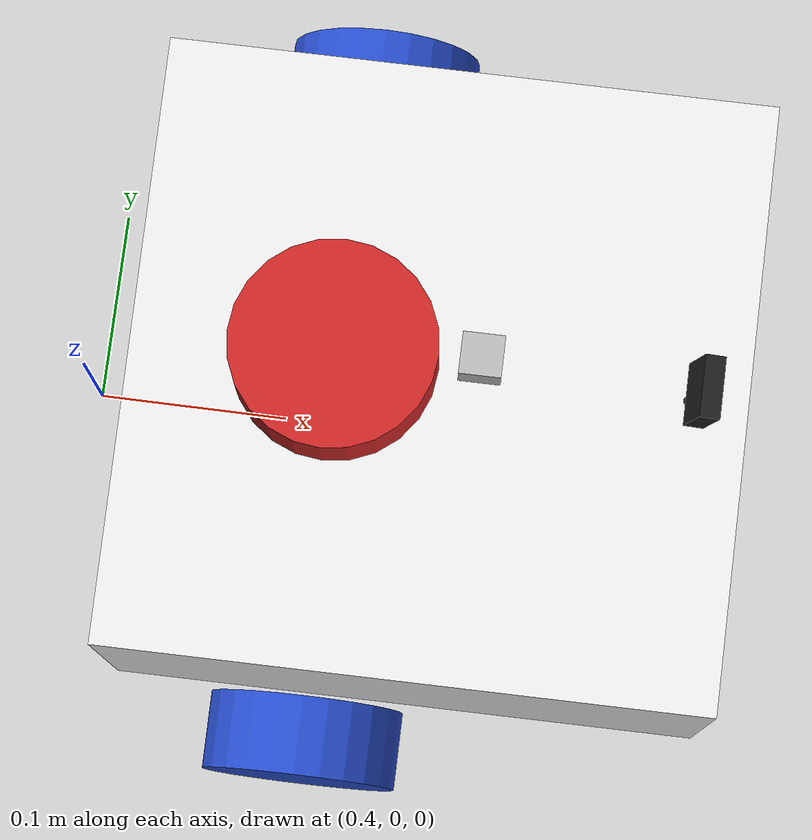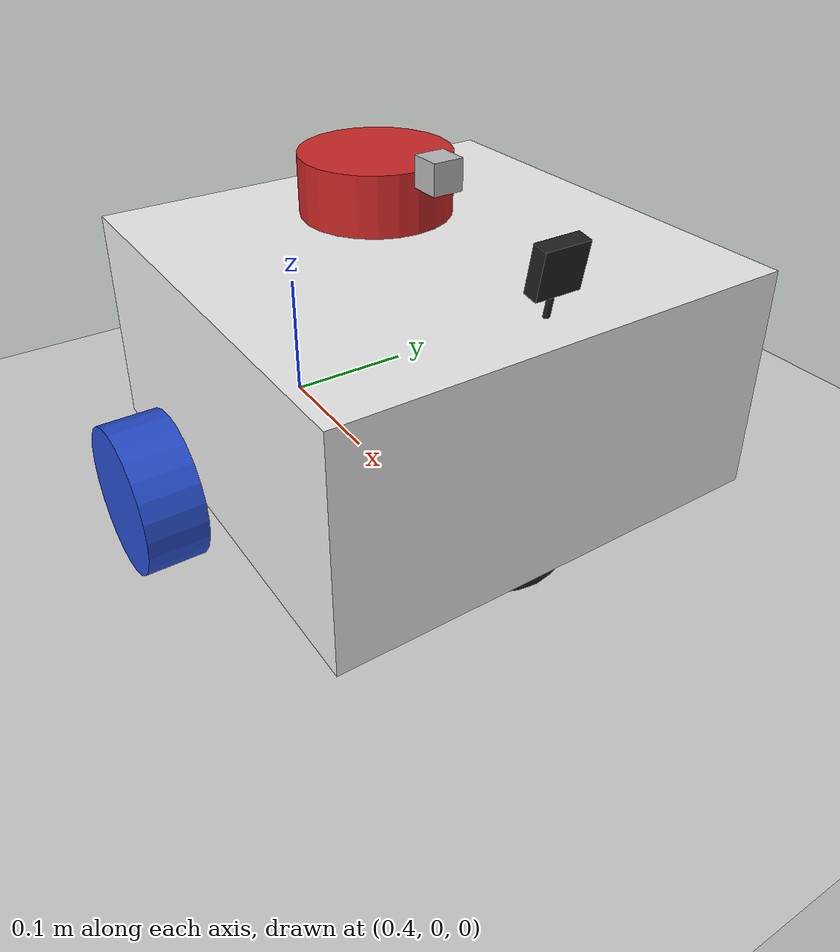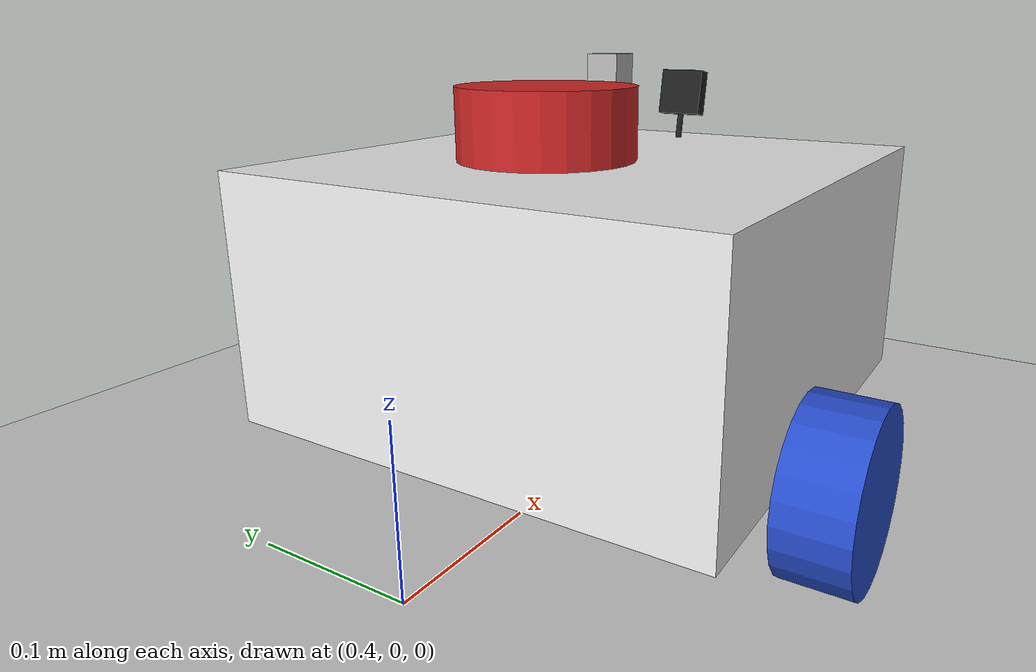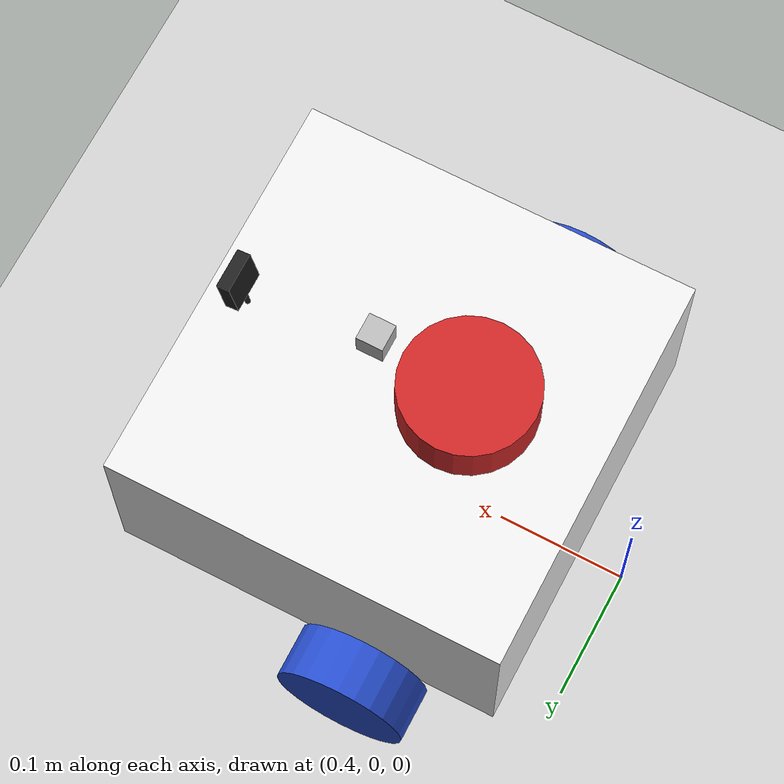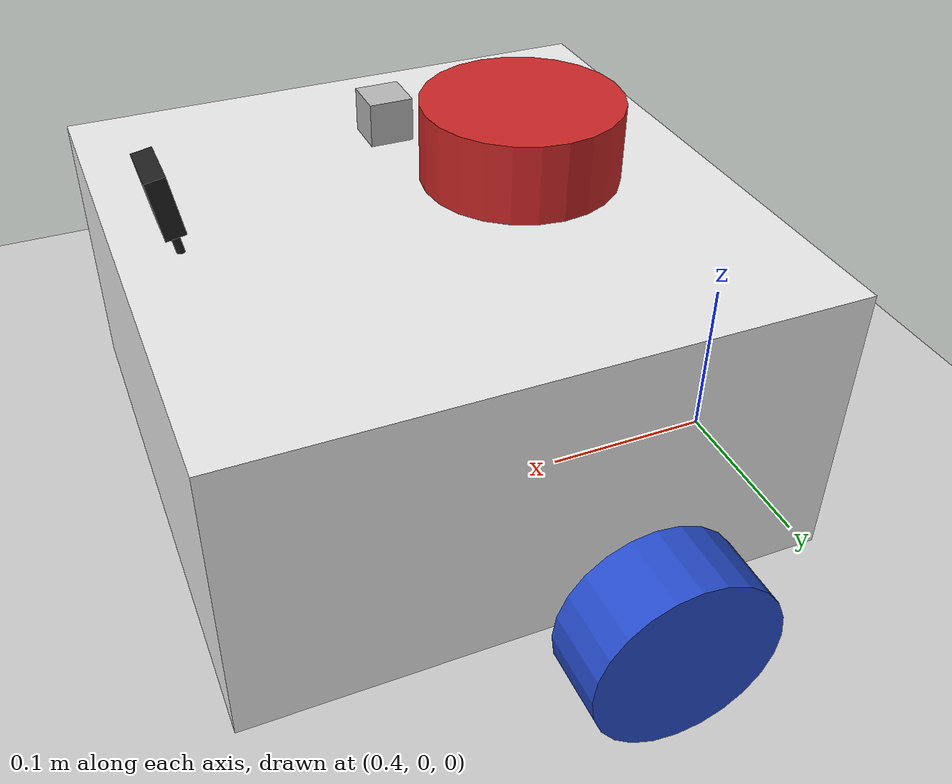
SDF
<sdf version="1.7">
 <world name="default">
  <light name="sun" type="directional">
   <pose>0 0 10 0 -0 0</pose>
   <diffuse>0.8 0.8 0.8 1</diffuse>
   <specular>0.2 0.2 0.2 1</specular>
   <attenuation>
    <range>1000</range>
    <constant>0.9</constant>
    <linear>0.01</linear>
    <quadratic>0.001</quadratic>
   </attenuation>
   <direction>-0.5 0.1 -0.9</direction>
   <spot><inner_angle>0</inner_angle><outer_angle>0</outer_angle><falloff>0</falloff></spot>
  </light>
  <model name="ground_plane">
   <static>1</static>
   <link name="link">
    <collision name="collision">
     <geometry><plane><normal>0 0 1</normal><size>100 100</size></plane></geometry>
     <surface>
      <contact><collide_bitmask>65535</collide_bitmask></contact>
      <friction><ode><mu>100</mu><mu2>50</mu2></ode></friction>
     </surface>
    </collision>
    <visual name="visual">
     <cast_shadows>0</cast_shadows>
     <geometry><plane><normal>0 0 1</normal><size>100 100</size></plane></geometry>
     <material>
      <script><uri>file://media/materials/scripts/gazebo.material</uri><name>Gazebo/Grey</name></script>
     </material>
    </visual>
   </link>
  </model>
  <gravity>0 0 -9.8</gravity>
  <magnetic_field>6e-06 2.3e-05 -4.2e-05</magnetic_field>
  <atmosphere type="adiabatic"/>
  <physics type="ode">
   <max_step_size>0.001</max_step_size>
   <real_time_factor>1</real_time_factor>
   <real_time_update_rate>1000</real_time_update_rate>
  </physics>
  <scene><ambient>0.4 0.4 0.4 1</ambient><background>0.7 0.7 0.7 1</background><shadows>1</shadows></scene>
  <spherical_coordinates>
   <surface_model>EARTH_WGS84</surface_model>
   <latitude_deg>0</latitude_deg>
   <longitude_deg>0</longitude_deg>
   <elevation>0</elevation>
   <heading_deg>0</heading_deg>
  </spherical_coordinates>
  <audio><device>default</device></audio>
  <model name="my_bot">
   <link name="base_link">
    <inertial>
     <pose>0.055735 0 0.078745 0 -0 0</pose>
     <mass>0.701</mass>
     <inertia>
      <ixx>0.00643178</ixx>
      <ixy>0</ixy>
      <ixz>0.00118755</ixz>
      <iyy>0.00746913</iyy>
      <iyz>0</iyz>
      <izz>0.0087625</izz>
     </inertia>
    </inertial>
    <collision name="base_link_fixed_joint_lump__chassis_collision">
     <pose>0.05 0 0.075 0 -0 0</pose>
     <geometry><box><size>0.3 0.3 0.15</size></box></geometry>
    </collision>
    <collision name="base_link_fixed_joint_lump__caster_wheel_collision_1">
     <pose>0.14 0 0 0 -0 0</pose>
     <geometry><sphere><radius>0.05</radius></sphere></geometry>
     <surface><friction><ode><mu>0.001</mu><mu2>0.001</mu2></ode></friction></surface>
    </collision>
    <collision name="base_link_fixed_joint_lump__imu_sensor_link_collision_2">
     <pose>0.07 0 0.2 0 -0 0</pose>
     <geometry><box><size>0.02 0.02 0.02</size></box></geometry>
    </collision>
    <collision name="base_link_fixed_joint_lump__laser_frame_collision_3">
     <pose>0 0 0.175 0 -0 0</pose>
     <geometry><cylinder><length>0.04</length><radius>0.05</radius></cylinder></geometry>
    </collision>
    <visual name="base_link_fixed_joint_lump__chassis_visual">
     <pose>0.05 0 0.075 0 -0 0</pose>
     <geometry><box><size>0.3 0.3 0.15</size></box></geometry>
     <material>
      <script><name>Gazebo/White</name><uri>file://media/materials/scripts/gazebo.material</uri></script>
     </material>
    </visual>
    <visual name="base_link_fixed_joint_lump__camera_link_visual_1">
     <pose>0.176 0 0.181 0 0.18 0</pose>
     <geometry><box><size>0.01 0.03 0.03</size></box></geometry>
     <material>
      <script><name>Gazebo/Black</name><uri>file://media/materials/scripts/gazebo.material</uri></script>
     </material>
    </visual>
    <visual name="base_link_fixed_joint_lump__camera_link_visual_2">
     <pose>0.167049 0 0.131808 0 0.18 0</pose>
     <geometry><cylinder><length>0.1</length><radius>0.002</radius></cylinder></geometry>
     <material>
      <script><name>Gazebo/Black</name><uri>file://media/materials/scripts/gazebo.material</uri></script>
     </material>
    </visual>
    <visual name="base_link_fixed_joint_lump__caster_wheel_visual_3">
     <pose>0.14 0 0 0 -0 0</pose>
     <geometry><sphere><radius>0.05</radius></sphere></geometry>
     <material>
      <script><name>Gazebo/Black</name><uri>file://media/materials/scripts/gazebo.material</uri></script>
     </material>
    </visual>
    <visual name="base_link_fixed_joint_lump__imu_sensor_link_visual_4">
     <pose>0.07 0 0.2 0 -0 0</pose>
     <geometry><box><size>0.02 0.02 0.02</size></box></geometry>
    </visual>
    <visual name="base_link_fixed_joint_lump__laser_frame_visual_5">
     <pose>0 0 0.175 0 -0 0</pose>
     <geometry><cylinder><length>0.04</length><radius>0.05</radius></cylinder></geometry>
     <material>
      <script><name>Gazebo/Red</name><uri>file://media/materials/scripts/gazebo.material</uri></script>
     </material>
    </visual>
    <sensor name="camera" type="camera">
     <visualize>1</visualize>
     <update_rate>10</update_rate>
     <camera>
      <horizontal_fov>1.089</horizontal_fov>
      <image><format>R8G8B8</format><width>640</width><height>480</height></image>
      <clip><near>0.05</near><far>8</far></clip>
     </camera>
     <plugin name="camera_controller" filename="libgazebo_ros_camera.so">
      <frame_name>camera_link_optical</frame_name>
     </plugin>
     <pose>0.176 0 0.181 0 0.18 0</pose>
    </sensor>
    <sensor name="imu_sensor" type="imu">
     <always_on>1</always_on>
     <update_rate>1000</update_rate>
     <visualize>1</visualize>
     <topic>__default_topic__</topic>
     <plugin name="imu_plugin" filename="libgazebo_ros_imu_sensor.so">
      <topicName>imu_data</topicName>
      <bodyName>imu_sensor_link</bodyName>
      <updateRateHZ>10.0</updateRateHZ>
      <gaussianNoise>0.0</gaussianNoise>
      <xyzOffset>0 0 0</xyzOffset>
      <rpyOffset>0 0 0</rpyOffset>
     </plugin>
     <pose>0.07 0 0.2 0 -0 0</pose>
    </sensor>
    <sensor name="laser" type="ray">
     <visualize>1</visualize>
     <update_rate>10</update_rate>
     <ray>
      <scan>
       <horizontal>
        <samples>360</samples>
        <min_angle>-3.14</min_angle>
        <max_angle>3.14</max_angle>
        <resolution>1</resolution>
       </horizontal>
       <vertical><samples>1</samples><min_angle>0</min_angle><max_angle>0</max_angle></vertical>
      </scan>
      <range><min>0.3</min><max>12</max></range>
     </ray>
     <plugin name="laser_controller" filename="libgazebo_ros_ray_sensor.so">
      <ros><argument>~/out:=scan</argument></ros>
      <output_type>sensor_msgs/LaserScan</output_type>
      <frame_name>laser_frame</frame_name>
     </plugin>
     <pose>0 0 0.175 0 -0 0</pose>
    </sensor>
   </link>
   <joint name="left_wheel_joint" type="revolute">
    <pose relative_to="base_link">0 0.175 0 -1.5708 0 0</pose>
    <parent>base_link</parent>
    <child>left_wheel</child>
    <axis>
     <xyz>0 0 1</xyz>
     <limit><lower>-1e+16</lower><upper>1e+16</upper></limit>
     <dynamics><spring_reference>0</spring_reference><spring_stiffness>0</spring_stiffness></dynamics>
    </axis>
   </joint>
   <link name="left_wheel">
    <pose relative_to="left_wheel_joint">0 0 0 0 -0 0</pose>
    <inertial>
     <mass>0.1</mass>
     <inertia>
      <ixx>7.58333e-05</ixx>
      <ixy>0</ixy>
      <ixz>0</ixz>
      <iyy>7.58333e-05</iyy>
      <iyz>0</iyz>
      <izz>0.000125</izz>
     </inertia>
    </inertial>
    <collision name="left_wheel_collision">
     <geometry><cylinder><length>0.04</length><radius>0.05</radius></cylinder></geometry>
    </collision>
    <visual name="left_wheel_visual">
     <geometry><cylinder><length>0.04</length><radius>0.05</radius></cylinder></geometry>
     <material>
      <script><name>Gazebo/Blue</name><uri>file://media/materials/scripts/gazebo.material</uri></script>
     </material>
    </visual>
   </link>
   <joint name="right_wheel_joint" type="revolute">
    <pose relative_to="base_link">0 -0.175 0 1.5708 -0 0</pose>
    <parent>base_link</parent>
    <child>right_wheel</child>
    <axis>
     <xyz>0 0 -1</xyz>
     <limit><lower>-1e+16</lower><upper>1e+16</upper></limit>
     <dynamics><spring_reference>0</spring_reference><spring_stiffness>0</spring_stiffness></dynamics>
    </axis>
   </joint>
   <link name="right_wheel">
    <pose relative_to="right_wheel_joint">0 0 0 0 -0 0</pose>
    <inertial>
     <mass>0.1</mass>
     <inertia>
      <ixx>7.58333e-05</ixx>
      <ixy>0</ixy>
      <ixz>0</ixz>
      <iyy>7.58333e-05</iyy>
      <iyz>0</iyz>
      <izz>0.000125</izz>
     </inertia>
    </inertial>
    <collision name="right_wheel_collision">
     <geometry><cylinder><length>0.04</length><radius>0.05</radius></cylinder></geometry>
    </collision>
    <visual name="right_wheel_visual">
     <geometry><cylinder><length>0.04</length><radius>0.05</radius></cylinder></geometry>
     <material>
      <script><name>Gazebo/Blue</name><uri>file://media/materials/scripts/gazebo.material</uri></script>
     </material>
    </visual>
   </link>
   <static>0</static>
   <plugin name="diff_drive" filename="libgazebo_ros_diff_drive.so">
    <left_joint>left_wheel_joint</left_joint>
    <right_joint>right_wheel_joint</right_joint>
    <wheel_separation>0.35</wheel_separation>
    <wheel_diameter>0.1</wheel_diameter>
    <max_wheel_torque>200</max_wheel_torque>
    <max_wheel_acceleration>10.0</max_wheel_acceleration>
    <odometry_frame>odom</odometry_frame>
    <robot_base_frame>base_link</robot_base_frame>
    <publish_odom>1</publish_odom>
    <publish_odom_tf>1</publish_odom_tf>
    <publish_wheel_tf>1</publish_wheel_tf>
   </plugin>
   <pose>0.533085 0.000269 0.049998 1.4e-05 -1.7e-05 0.007143</pose>
  </model>
 </world>
</sdf>
